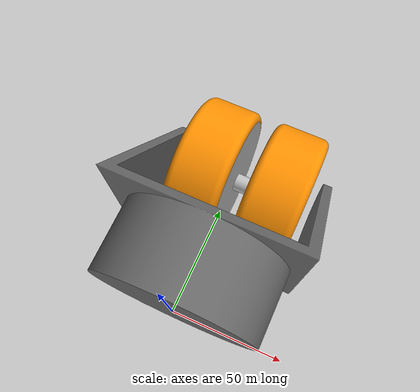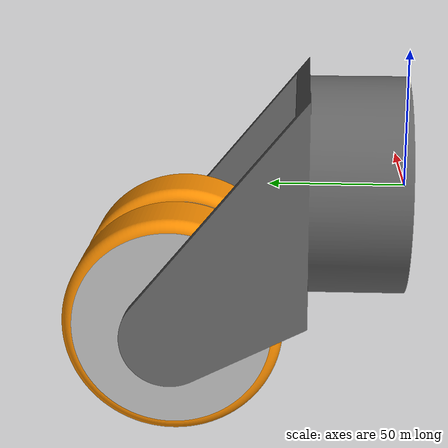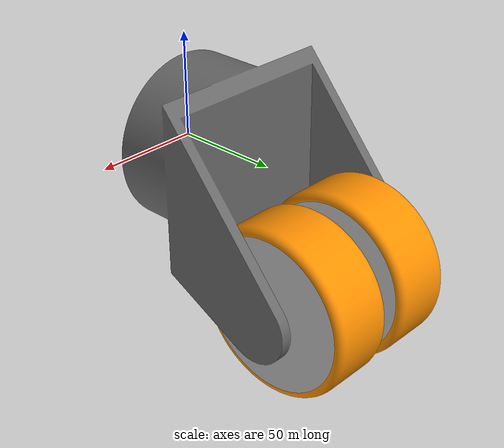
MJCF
<mujoco model="diff_caster">
  <default>
    <default class="visual">
      <geom group="2" type="mesh" contype="0" conaffinity="0"/>
    </default>
    <default class="collision">
      <geom group="3" type="mesh"/>
    </default>
  </default>
  <asset>
    <material name="material_diff_caster_0" specular="0.20000000000000004" shininess="1.0" rgba="0.41176471 0.41176471 0.41176471 1.0"/>
    <material name="material_diff_caster_1" specular="0.20000000000000004" shininess="1.0" rgba="1.00000000 0.56862745 0.00000000 1.0"/>
    <material name="material_diff_caster_2" specular="0.20000000000000004" shininess="1.0" rgba="0.74901961 0.74901961 0.74901961 1.0"/>
    <mesh file="diff_caster_0.obj"/>
    <mesh file="diff_caster_1.obj"/>
    <mesh file="diff_caster_2.obj"/>
  </asset>
  <worldbody>
    <body name="diff_caster">
      <geom mesh="diff_caster_0" material="material_diff_caster_2" class="visual"/>
      <geom mesh="diff_caster_1" material="material_diff_caster_1" class="visual"/>
      <geom mesh="diff_caster_2" material="material_diff_caster_0" class="visual"/>
      <geom mesh="diff_caster_0" class="collision"/>
      <geom mesh="diff_caster_1" class="collision"/>
      <geom mesh="diff_caster_2" class="collision"/>
    </body>
  </worldbody>
</mujoco>
